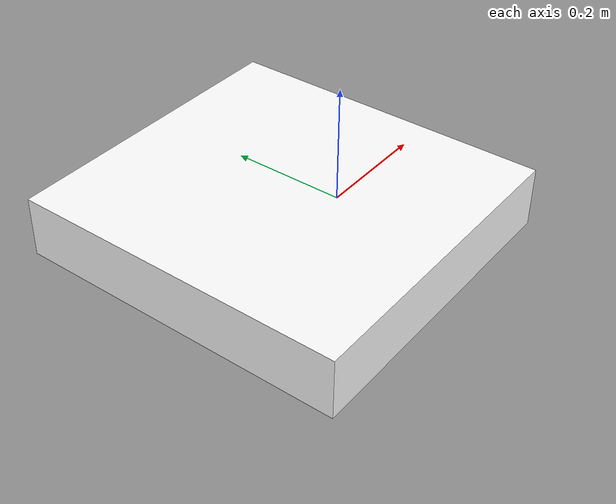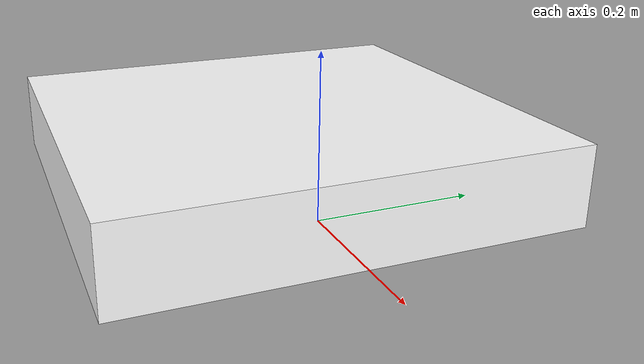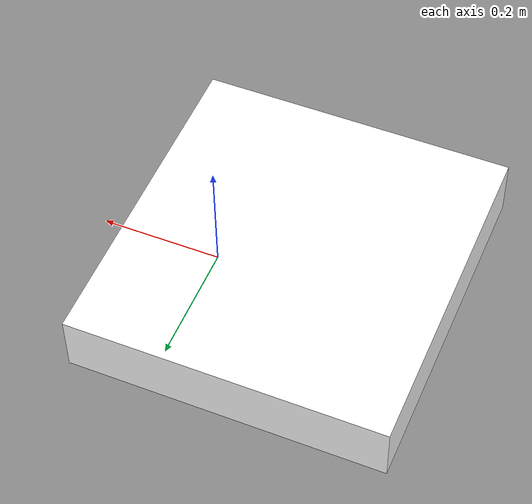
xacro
<?xml version="1.0"?>
<robot xmlns:xacro="http://www.ros.org/wiki/xacro">

	<material name="white">
		<color rgba="1 1 1 1"/>
	</material>

	<link name="base_link_r1">

	</link>

	<joint name="chassis_joint_r1" type="fixed">
		<parent link="base_link_r1"/>
		<child link="chassis_r1"/>
		<origin xyz="-0.1325 0 0"/>
	</joint>

	<link name="chassis_r1">
		<visual>
			<origin xyz="0 0 0.05"/>
			<geometry>
				<box size="0.52 0.55 0.10"/>
			</geometry>
			<material name="white"/>
		</visual>
	</link>

</robot>
